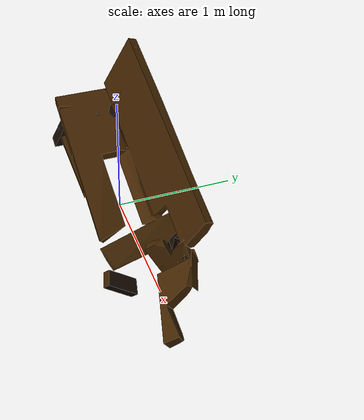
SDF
<?xml version="1.0" ?>

<sdf version="1.4">
  <model name="iai_bench_broken">
    <static>true</static>
    <link name="iai_bench_broken">
      <collision name="collision">
	<geometry>
            <mesh>
	      <uri>model://bench_broken/bench_broken.stl</uri>
	    </mesh>
          </geometry>
      </collision>
      <visual name="vis">
        <cast_shadows>false</cast_shadows>

	<geometry>
            <mesh>
	      <uri>model://bench_broken/bench_broken.dae</uri>
	    </mesh>
          </geometry>
      </visual>

    </link>
          <plugin name="scanable"
              filename="libiai_object_transmitter.so">
            <object_type>terrain</object_type><!-- this is used to determine -->
            <absolute_detection>true</absolute_detection>
            <attribute key="otype" value="bench"/>
            <attribute key="manmade" value="true"/>
            <attribute key="navigation" value="none"/>
      </plugin>
  </model>
</sdf>
